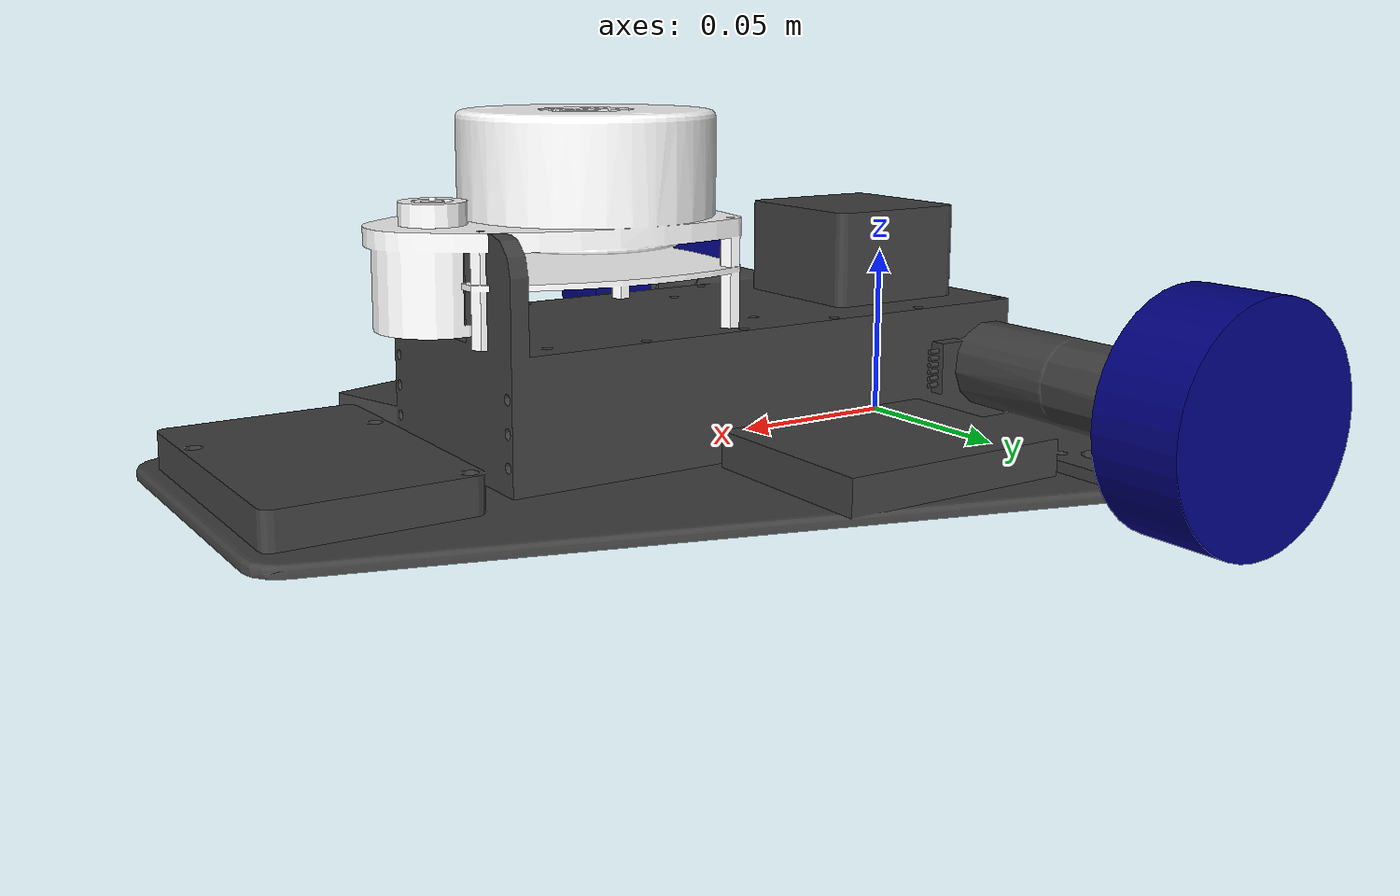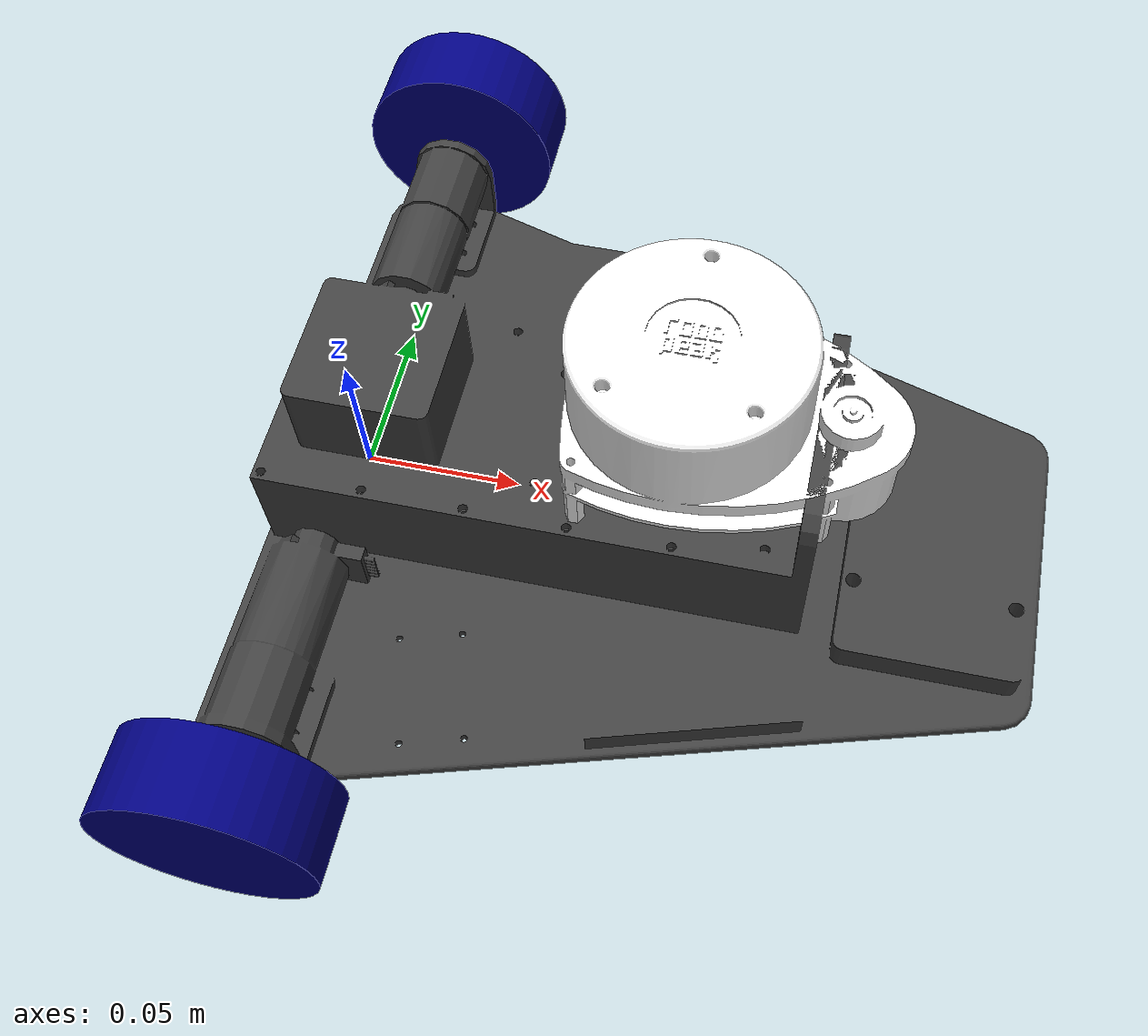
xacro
<?xml version="1.0" encoding="utf-8"?>
<robot xmlns:xacro="http://www.ros.org/wiki/xacro">

<!-- BASE LINK -->

    <link
    name="base_link">
     <inertial>
       <origin
        xyz="0.070133662897501 0.00354955354888109 0.0183200114204214"
        rpy="0 0 0" />
      <mass
        value="0.556112519731525" />
      <inertia
        ixx="0.00154815109045063"
        ixy="0.00010780862380031"
        ixz="0.000221604200759326"
        iyy="0.0027617246804416"
        iyz="1.83612061370921E-05"
        izz="0.00395406219863791" />
    </inertial>
    <visual>
      <origin
        xyz="0 0 0"
        rpy="0 0 0" />
      <geometry>
        <mesh
          filename="file://$(find new_bot)/description/meshes/base_link.STL" />
      </geometry>
      <material
        name="">
        <color
          rgba="0.250980392156863 0.250980392156863 0.250980392156863 1" />
      </material>
    </visual>
    <collision>
      <origin
        xyz="0 0 0"
        rpy="0 0 0" />
      <geometry>
        <mesh
          filename="file://$(find new_bot)/description/meshes/base_link.STL" />
      </geometry>
    </collision>
  </link>

  <gazebo reference="base_link">
    <material>Gazebo/Black</material>
  </gazebo>

 <!-- LEFT WHEEL LINK -->
   <link
    name="left_wheel">
    <inertial>
      <origin
        xyz="6.93889390390723E-18 0 0"
        rpy="0 0 0" />
      <mass
        value="0.10163975077205" />
      <inertia
        ixx="3.2132983707622E-05"
        ixy="3.03239240453886E-19"
        ixz="-1.94584643807998E-21"
        iyy="5.36784933764888E-05"
        iyz="-3.01898169232286E-21"
        izz="3.2132983707622E-05" />
    </inertial>
    <visual>
      <origin
        xyz="0 0 0"
        rpy="0 0 0" />
      <geometry>
        <mesh
          filename="file://$(find new_bot)/description/meshes/left_wheel.STL" />
      </geometry>
      <material
        name="">
        <color
          rgba="0 0 0.501960784313725 1" />
      </material>
    </visual>
    <collision>
      <origin
        xyz="0 0 0"
        rpy="0 0 0" />
      <geometry>
        <mesh
          filename="file://$(find new_bot)/description/meshes/left_wheel.STL" />
      </geometry>
    </collision>
  </link>

  <gazebo reference="left_wheel">
    <material>Gazebo/Blue</material>
  </gazebo>

  <joint
    name="left_wheel_joint"
    type="continuous">
    <origin
      xyz="0.001 0.12868 0.0235"
      rpy="0 0 0" />
    <parent
      link="base_link" />
    <child
      link="left_wheel" />
    <axis
      xyz="0 1 0" />
  </joint>

<!-- RIGHT WHEEL LINK -->

   <link
    name="right_wheel">
    <inertial>
      <origin
        xyz="-1.38777878078145E-17 -2.77555756156289E-17 -1.38777878078145E-17"
        rpy="0 0 0" />
      <mass
        value="0.10163975077205" />
      <inertia
        ixx="3.2132983707622E-05"
        ixy="3.0244660672499E-19"
        ixz="-1.94584643807989E-21"
        iyy="5.36784933764888E-05"
        iyz="3.88380233146956E-21"
        izz="3.2132983707622E-05" />
    </inertial>
    <visual>
      <origin
        xyz="0 0 0"
        rpy="0 0 0" />
      <geometry>
        <mesh
          filename="file://$(find new_bot)/description/meshes/right_wheel.STL" />
      </geometry>
      <material
        name="">
        <color
          rgba="0 0 0.501960784313725 1" />
      </material>
    </visual>
    <collision>
      <origin
        xyz="0 0 0"
        rpy="0 0 0" />
      <geometry>
        <mesh
          filename="file://$(find new_bot)/description/meshes/right_wheel.STL" />
      </geometry>
    </collision>
  </link>

  <gazebo reference="right_wheel">
    <material>Gazebo/Blue</material>
  </gazebo>

  <joint
    name="right_wheel_joint"
    type="continuous">
    <origin
      xyz="0.001 -0.12868 0.0235"
      rpy="0 0 0" />
    <parent
      link="base_link" />
    <child
      link="right_wheel" />
    <axis
      xyz="0 -1 0" />
  </joint>

<!-- LIDAR LINK-->

  <link name="laser">
    <inertial>
      <origin
        xyz="-0.0067665301166636 9.19261110876313E-05 -0.00838187226715975"
        rpy="0 0 0" />
      <mass
        value="0.174023656294632" />
      <inertia
        ixx="8.0412346059381E-05"
        ixy="-1.04874872480737E-07"
        ixz="-2.06933187729991E-05"
        iyy="0.000125629651580714"
        iyz="4.04290059384042E-07"
        izz="0.000143604492343178" />
    </inertial>
    <visual>
      <origin
        xyz="0 0 0"
        rpy="0 0 0" />
      <geometry>
        <mesh
          filename="file://$(find new_bot)/description/meshes/laser_frame.STL" />
      </geometry>
      <material
        name="">
        <color
          rgba="1 1 1 1" />
      </material>
    </visual>
    <collision>
      <origin
        xyz="0 0 0"
        rpy="0 0 0" />
      <geometry>
        <mesh
          filename="file://$(find new_bot)/description/meshes/lidar_collision.STL" />
      </geometry>
    </collision>
  </link>

  <gazebo reference="laser">
    <material>Gazebo/Orange</material>

            <sensor name="laser" type="ray">
            <pose> 0 0 0 0 0 0 </pose>
            <visualize>true</visualize>
            <update_rate>10</update_rate>
            <ray>
                <scan>
                    <horizontal>
                        <samples>360</samples>
                        <min_angle>-3.14</min_angle>
                        <max_angle>3.14</max_angle>
                    </horizontal>
                </scan>
                <range>
                    <min>0.3</min>
                    <max>12</max>
                </range>
            </ray>
            <plugin name="laser_controller" filename="libgazebo_ros_ray_sensor.so">
                <ros>
                    <argument>~/out:=scan</argument>
                </ros>
                <output_type>sensor_msgs/LaserScan</output_type>
                <frame_name>laser_frame</frame_name>
            </plugin>
        </sensor>
  </gazebo>

  <joint
    name="laser_joint"
    type="fixed">
    <origin
      xyz="0.104800054804252 0 0.0820000000000001"
      rpy="0 0 3.14159" />
    <parent
      link="base_link" />
    <child
      link="laser" />
    <axis
      xyz="0 0 0" />
  </joint>

<!-- CAMERA LINK-->

    <link
    name="camera_link">
    <inertial>
      <origin
        xyz="-0.0103584698596122 -2.01596126545994E-05 0.00163484283690582"
        rpy="0 0 0" />
      <mass
        value="0.00529235477598514" />
      <inertia
        ixx="5.17063055319424E-07"
        ixy="3.88296936830359E-13"
        ixz="-1.96692485943055E-09"
        iyy="1.9007613450553E-07"
        iyz="2.34133392020719E-10"
        izz="3.37850233450208E-07" />
    </inertial>
    <visual>
      <origin
        xyz="0 0 0"
        rpy="0 0 0" />
      <geometry>
        <mesh
          filename="file://$(find new_bot)/description/meshes/camera_link.STL" />
      </geometry>
      <material
        name="">
        <color
          rgba="0.250980392156863 0.250980392156863 0.250980392156863 1" />
      </material>
    </visual>
    <collision>
      <origin
        xyz="0 0 0"
        rpy="0 0 0" />
      <geometry>
        <mesh
          filename="file://$(find new_bot)/description/meshes/camera_collision.STL" />
      </geometry>
    </collision>
  </link>

  <gazebo reference="camera_link">
    <material>Gazebo/Orange</material>
  </gazebo>

   <joint
    name="camera_joint"
    type="fixed">
    <origin
      xyz="0.16129 0 0.05345"
      rpy="0 0 0" />
    <parent
      link="base_link" />
    <child
      link="camera_link" />
    <axis
      xyz="0 0 0" />
  </joint>

<!--CASTER WHEEL LINK-->

  <link
    name="caster_wheel">
    <inertial>
      <origin
        xyz="2.77555756156289E-17 0 1.38777878078145E-17"
        rpy="0 0 0" />
      <mass
        value="0.00836574047989968" />
      <inertia
        ixx="1.34931028200302E-07"
        ixy="-4.09702557397515E-24"
        ixz="0"
        iyy="1.34931028200302E-07"
        iyz="5.91319576211689E-39"
        izz="1.34931028200302E-07" />
    </inertial>
    <visual>
      <origin
        xyz="0 0 0"
        rpy="0 0 0" />
      <geometry>
        <mesh
          filename="file://$(find new_bot)/description/meshes/caster_wheel.STL" />
      </geometry>
      <material
        name="">
        <color
          rgba="0.529411764705882 0.549019607843137 0.549019607843137 1" />
      </material>
    </visual>
    <collision>
      <origin
        xyz="0 0 0"
        rpy="0 0 0" />
      <geometry>
        <mesh
          filename="file://$(find new_bot)/description/meshes/caster_wheel.STL" />
      </geometry>
    </collision>
  </link>

  <gazebo reference="caster_wheel">
    <material>Gazebo/White</material>
    <mu1 value="0.001"/>
    <mu2 value="0.001"/>
  </gazebo>

  <joint
    name="caster_wheel_joint"
    type="fixed">
    <origin
      xyz="0.18465 0 -0.00265"
      rpy="1.5708 0 0" />
    <parent
      link="base_link" />
    <child
      link="caster_wheel" />
    <axis
      xyz="0 0 0" />
    <dynamics
      friction="0.001" />
  </joint>
</robot>
